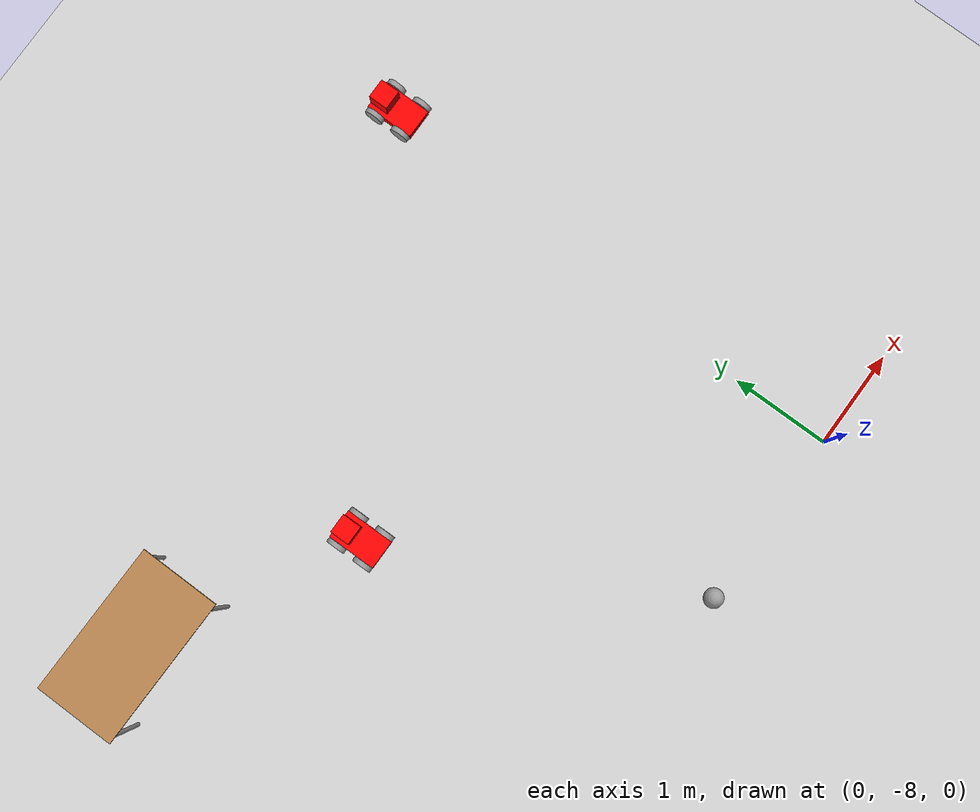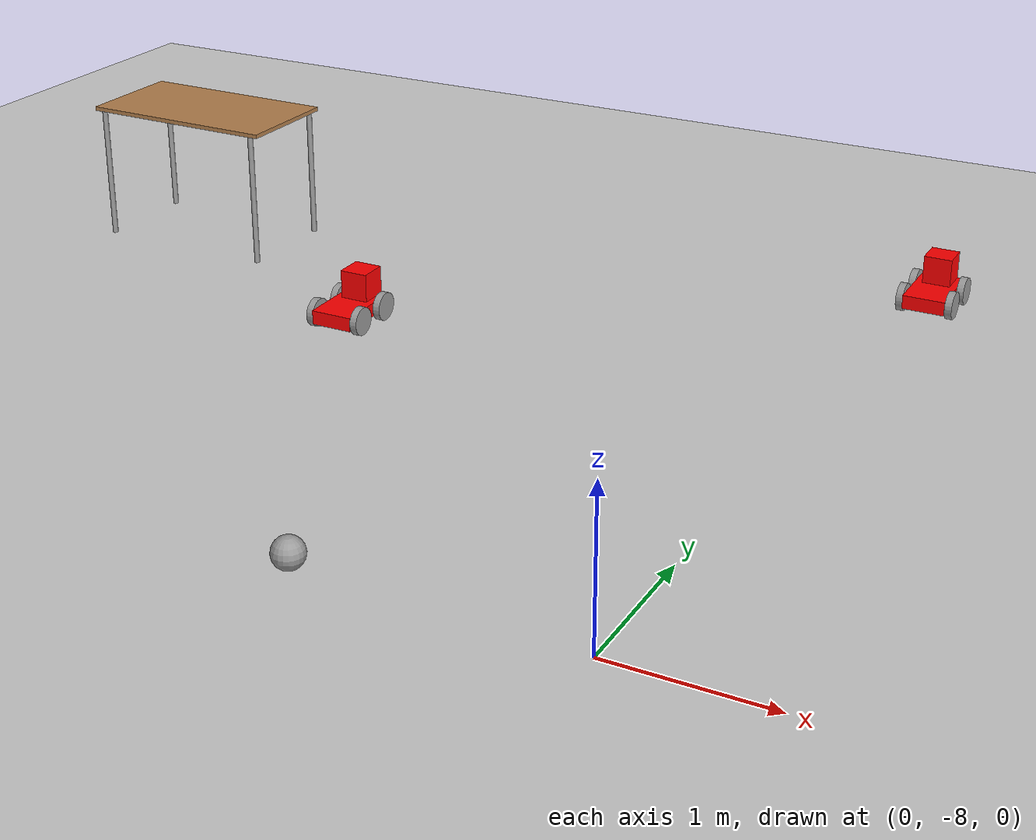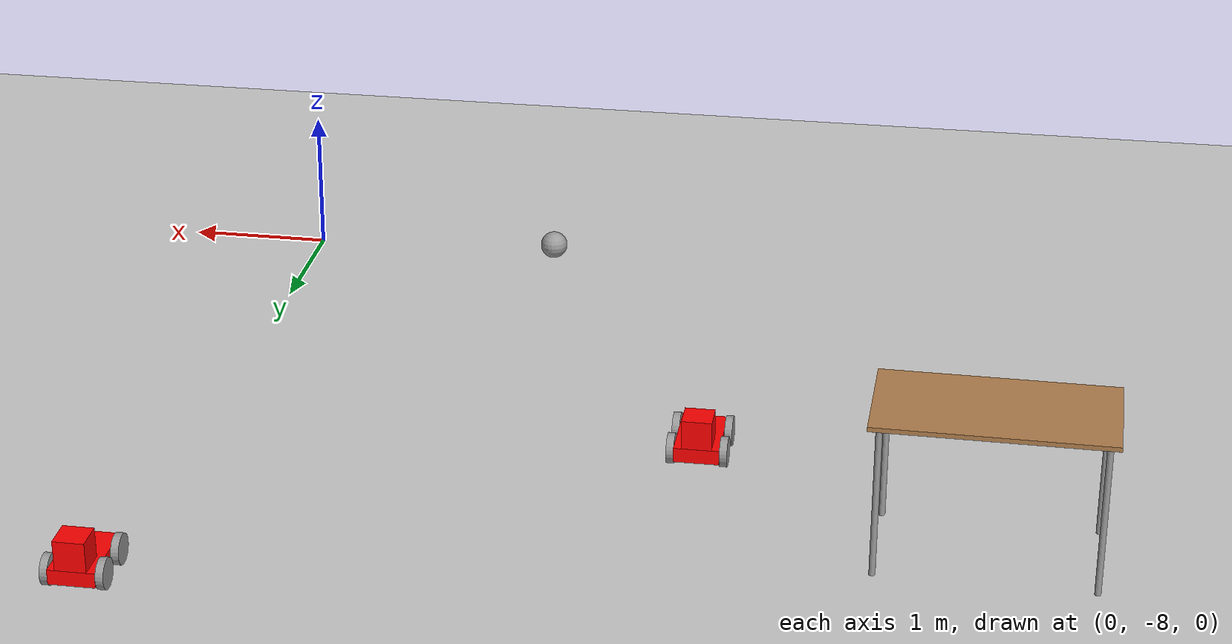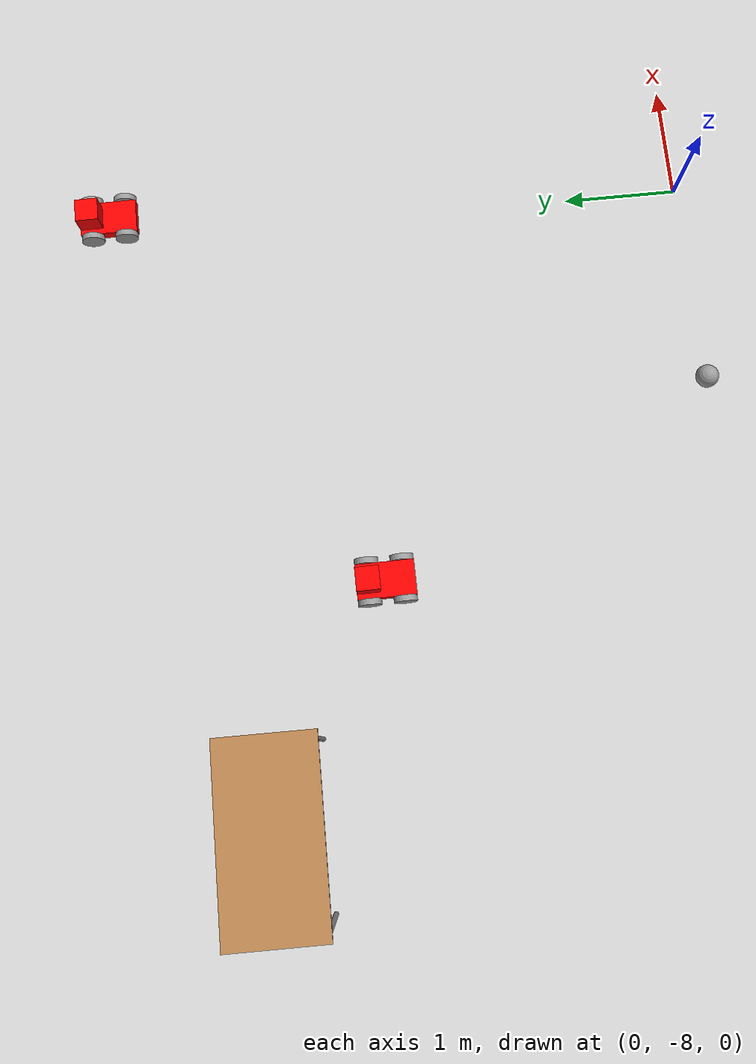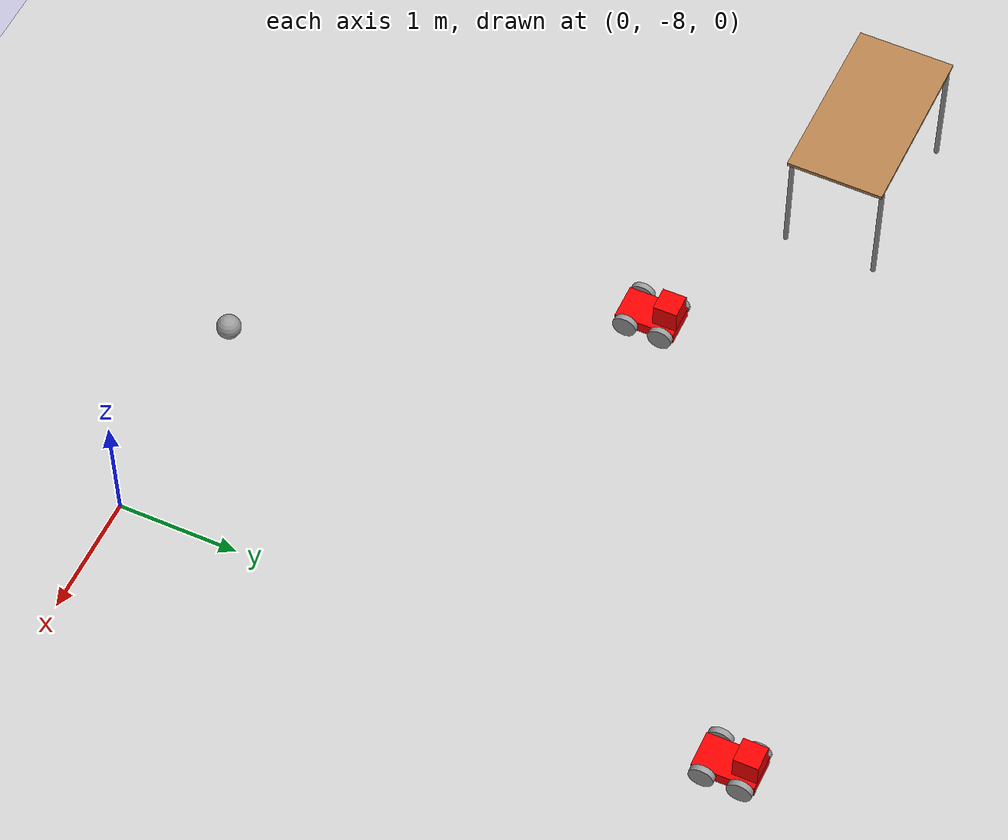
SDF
<sdf version="1.6">
 <world name="default">
  <model name="ground_plane">
   <static>1</static>
   <link name="link">
    <collision name="collision">
     <geometry><plane><normal>0 0 1</normal><size>100 100</size></plane></geometry>
     <surface>
      <contact><collide_bitmask>65535</collide_bitmask></contact>
      <friction><ode><mu>100</mu><mu2>50</mu2></ode></friction>
     </surface>
    </collision>
    <visual name="visual">
     <cast_shadows>0</cast_shadows>
     <geometry><plane><normal>0 0 1</normal><size>100 100</size></plane></geometry>
     <material>
      <script><uri>file://media/materials/scripts/gazebo.material</uri><name>Gazebo/Grey</name></script>
     </material>
    </visual>
   </link>
  </model>
  <model name="table">
   <static>1</static>
   <link name="link">
    <collision name="surface">
     <pose>0 0 1 0 -0 0</pose>
     <geometry><box><size>1.5 0.8 0.03</size></box></geometry>
     <surface><friction><ode><mu>0.6</mu><mu2>0.6</mu2></ode></friction></surface>
    </collision>
    <visual name="visual1">
     <pose>0 0 1 0 -0 0</pose>
     <geometry><box><size>1.5 0.8 0.03</size></box></geometry>
     <material>
      <script><uri>file://media/materials/scripts/gazebo.material</uri><name>Gazebo/Wood</name></script>
     </material>
    </visual>
    <collision name="front_left_leg">
     <pose>0.68 0.38 0.5 0 -0 0</pose>
     <geometry><cylinder><radius>0.02</radius><length>1</length></cylinder></geometry>
    </collision>
    <visual name="front_left_leg">
     <pose>0.68 0.38 0.5 0 -0 0</pose>
     <geometry><cylinder><radius>0.02</radius><length>1</length></cylinder></geometry>
     <material>
      <script><uri>file://media/materials/scripts/gazebo.material</uri><name>Gazebo/Grey</name></script>
     </material>
    </visual>
    <collision name="front_right_leg">
     <pose>0.68 -0.38 0.5 0 -0 0</pose>
     <geometry><cylinder><radius>0.02</radius><length>1</length></cylinder></geometry>
    </collision>
    <visual name="front_right_leg">
     <pose>0.68 -0.38 0.5 0 -0 0</pose>
     <geometry><cylinder><radius>0.02</radius><length>1</length></cylinder></geometry>
     <material>
      <script><uri>file://media/materials/scripts/gazebo.material</uri><name>Gazebo/Grey</name></script>
     </material>
    </visual>
    <collision name="back_right_leg">
     <pose>-0.68 -0.38 0.5 0 -0 0</pose>
     <geometry><cylinder><radius>0.02</radius><length>1</length></cylinder></geometry>
    </collision>
    <visual name="back_right_leg">
     <pose>-0.68 -0.38 0.5 0 -0 0</pose>
     <geometry><cylinder><radius>0.02</radius><length>1</length></cylinder></geometry>
     <material>
      <script><uri>file://media/materials/scripts/gazebo.material</uri><name>Gazebo/Grey</name></script>
     </material>
    </visual>
    <collision name="back_left_leg">
     <pose>-0.68 0.38 0.5 0 -0 0</pose>
     <geometry><cylinder><radius>0.02</radius><length>1</length></cylinder></geometry>
    </collision>
    <visual name="back_left_leg">
     <pose>-0.68 0.38 0.5 0 -0 0</pose>
     <geometry><cylinder><radius>0.02</radius><length>1</length></cylinder></geometry>
     <material>
      <script><uri>file://media/materials/scripts/gazebo.material</uri><name>Gazebo/Grey</name></script>
     </material>
    </visual>
   </link>
   <pose>-5.22763 -3.98162 0 0 0 -0.01339</pose>
  </model>
  <model name="RobotCar_0">
   <link name="link_0_clone">
    <pose>-0 -0.025 -0.025 0 -0 0</pose>
    <inertial>
     <mass>0.5</mass>
     <inertia>
      <ixx>0.166667</ixx>
      <ixy>0</ixy>
      <ixz>0</ixz>
      <iyy>0.166667</iyy>
      <iyz>0</iyz>
      <izz>0.166667</izz>
     </inertia>
    </inertial>
    <visual name="visual">
     <geometry><box><size>0.3 0.5 0.1</size></box></geometry>
     <material>
      <lighting>1</lighting>
      <script><uri>file://media/materials/scripts/gazebo.material</uri><name>Gazebo/Grey</name></script>
      <shader type="pixel"><normal_map>__default__</normal_map></shader>
      <ambient>1 0 0 1</ambient>
      <diffuse>0.7 0.7 0.7 1</diffuse>
      <specular>0.01 0.01 0.01 1</specular>
      <emissive>0 0 0 1</emissive>
     </material>
    </visual>
    <collision name="collision">
     <geometry><box><size>0.3 0.5 0.1</size></box></geometry>
     <surface>
      <friction>
       <ode><mu>1</mu><mu2>1</mu2><fdir1>0 0 0</fdir1><slip1>0</slip1><slip2>0</slip2></ode>
       <torsional>
        <coefficient>1</coefficient>
        <patch_radius>0</patch_radius>
        <surface_radius>0</surface_radius>
        <use_patch_radius>1</use_patch_radius>
        <ode><slip>0</slip></ode>
       </torsional>
      </friction>
      <bounce><restitution_coefficient>0</restitution_coefficient><threshold>1e+06</threshold></bounce>
      <contact>
       <collide_without_contact>0</collide_without_contact>
       <collide_without_contact_bitmask>1</collide_without_contact_bitmask>
       <collide_bitmask>1</collide_bitmask>
       <ode>
        <soft_cfm>0</soft_cfm>
        <soft_erp>0.2</soft_erp>
        <kp>1e+13</kp>
        <kd>1</kd>
        <max_vel>0.01</max_vel>
        <min_depth>0</min_depth>
       </ode>
       <bullet>
        <split_impulse>1</split_impulse>
        <split_impulse_penetration_threshold>-0.01</split_impulse_penetration_threshold>
        <soft_cfm>0</soft_cfm>
        <soft_erp>0.2</soft_erp>
        <kp>1e+13</kp>
        <kd>1</kd>
       </bullet>
      </contact>
     </surface>
    </collision>
   </link>
   <link name="link_4_clone">
    <pose>-0.17508 0.124999 -0.025 0 -1.57 0</pose>
    <inertial>
     <mass>1</mass>
     <inertia><ixx>0.145833</ixx><ixy>0</ixy><ixz>0</ixz><iyy>0.145833</iyy><iyz>0</iyz><izz>0.125</izz></inertia>
    </inertial>
    <visual name="visual">
     <geometry><cylinder><radius>0.1</radius><length>0.05</length></cylinder></geometry>
     <material>
      <lighting>1</lighting>
      <script><uri>file://media/materials/scripts/gazebo.material</uri><name>Gazebo/Grey</name></script>
      <shader type="pixel"><normal_map>__default__</normal_map></shader>
      <ambient>0.3 0.3 0.3 1</ambient>
      <diffuse>0.7 0.7 0.7 1</diffuse>
      <specular>0.01 0.01 0.01 1</specular>
      <emissive>0 0 0 1</emissive>
     </material>
    </visual>
    <collision name="collision">
     <geometry><cylinder><radius>0.1</radius><length>0.05</length></cylinder></geometry>
     <surface>
      <friction>
       <ode><mu>1</mu><mu2>1</mu2><fdir1>0 0 0</fdir1><slip1>0</slip1><slip2>0</slip2></ode>
       <torsional>
        <coefficient>1</coefficient>
        <patch_radius>0</patch_radius>
        <surface_radius>0</surface_radius>
        <use_patch_radius>1</use_patch_radius>
        <ode><slip>0</slip></ode>
       </torsional>
      </friction>
      <bounce><restitution_coefficient>0</restitution_coefficient><threshold>1e+06</threshold></bounce>
      <contact>
       <collide_without_contact>0</collide_without_contact>
       <collide_without_contact_bitmask>1</collide_without_contact_bitmask>
       <collide_bitmask>1</collide_bitmask>
       <ode>
        <soft_cfm>0</soft_cfm>
        <soft_erp>0.2</soft_erp>
        <kp>1e+13</kp>
        <kd>1</kd>
        <max_vel>0.01</max_vel>
        <min_depth>0</min_depth>
       </ode>
       <bullet>
        <split_impulse>1</split_impulse>
        <split_impulse_penetration_threshold>-0.01</split_impulse_penetration_threshold>
        <soft_cfm>0</soft_cfm>
        <soft_erp>0.2</soft_erp>
        <kp>1e+13</kp>
        <kd>1</kd>
       </bullet>
      </contact>
     </surface>
    </collision>
   </link>
   <link name="link_4_clone_clone">
    <pose>0.17508 0.124999 -0.025 0 -1.57 0</pose>
    <inertial>
     <mass>1</mass>
     <inertia><ixx>0.145833</ixx><ixy>0</ixy><ixz>0</ixz><iyy>0.145833</iyy><iyz>0</iyz><izz>0.125</izz></inertia>
    </inertial>
    <visual name="visual">
     <geometry><cylinder><radius>0.1</radius><length>0.05</length></cylinder></geometry>
     <material>
      <lighting>1</lighting>
      <script><uri>file://media/materials/scripts/gazebo.material</uri><name>Gazebo/Grey</name></script>
      <shader type="pixel"><normal_map>__default__</normal_map></shader>
      <ambient>0.3 0.3 0.3 1</ambient>
      <diffuse>0.7 0.7 0.7 1</diffuse>
      <specular>0.01 0.01 0.01 1</specular>
      <emissive>0 0 0 1</emissive>
     </material>
    </visual>
    <collision name="collision">
     <geometry><cylinder><radius>0.1</radius><length>0.05</length></cylinder></geometry>
     <surface>
      <friction>
       <ode><mu>1</mu><mu2>1</mu2><fdir1>0 0 0</fdir1><slip1>0</slip1><slip2>0</slip2></ode>
       <torsional>
        <coefficient>1</coefficient>
        <patch_radius>0</patch_radius>
        <surface_radius>0</surface_radius>
        <use_patch_radius>1</use_patch_radius>
        <ode><slip>0</slip></ode>
       </torsional>
      </friction>
      <bounce><restitution_coefficient>0</restitution_coefficient><threshold>1e+06</threshold></bounce>
      <contact>
       <collide_without_contact>0</collide_without_contact>
       <collide_without_contact_bitmask>1</collide_without_contact_bitmask>
       <collide_bitmask>1</collide_bitmask>
       <ode>
        <soft_cfm>0</soft_cfm>
        <soft_erp>0.2</soft_erp>
        <kp>1e+13</kp>
        <kd>1</kd>
        <max_vel>0.01</max_vel>
        <min_depth>0</min_depth>
       </ode>
       <bullet>
        <split_impulse>1</split_impulse>
        <split_impulse_penetration_threshold>-0.01</split_impulse_penetration_threshold>
        <soft_cfm>0</soft_cfm>
        <soft_erp>0.2</soft_erp>
        <kp>1e+13</kp>
        <kd>1</kd>
       </bullet>
      </contact>
     </surface>
    </collision>
   </link>
   <link name="link_4_clone_clone_0">
    <pose>0.17508 -0.175 -0.025 0 -1.57 0</pose>
    <inertial>
     <mass>1</mass>
     <inertia><ixx>0.145833</ixx><ixy>0</ixy><ixz>0</ixz><iyy>0.145833</iyy><iyz>0</iyz><izz>0.125</izz></inertia>
    </inertial>
    <visual name="visual">
     <geometry><cylinder><radius>0.1</radius><length>0.05</length></cylinder></geometry>
     <material>
      <lighting>1</lighting>
      <script><uri>file://media/materials/scripts/gazebo.material</uri><name>Gazebo/Grey</name></script>
      <shader type="pixel"><normal_map>__default__</normal_map></shader>
      <ambient>0.3 0.3 0.3 1</ambient>
      <diffuse>0.7 0.7 0.7 1</diffuse>
      <specular>0.01 0.01 0.01 1</specular>
      <emissive>0 0 0 1</emissive>
     </material>
    </visual>
    <collision name="collision">
     <geometry><cylinder><radius>0.1</radius><length>0.05</length></cylinder></geometry>
     <surface>
      <friction>
       <ode><mu>1</mu><mu2>1</mu2><fdir1>0 0 0</fdir1><slip1>0</slip1><slip2>0</slip2></ode>
       <torsional>
        <coefficient>1</coefficient>
        <patch_radius>0</patch_radius>
        <surface_radius>0</surface_radius>
        <use_patch_radius>1</use_patch_radius>
        <ode><slip>0</slip></ode>
       </torsional>
      </friction>
      <bounce><restitution_coefficient>0</restitution_coefficient><threshold>1e+06</threshold></bounce>
      <contact>
       <collide_without_contact>0</collide_without_contact>
       <collide_without_contact_bitmask>1</collide_without_contact_bitmask>
       <collide_bitmask>1</collide_bitmask>
       <ode>
        <soft_cfm>0</soft_cfm>
        <soft_erp>0.2</soft_erp>
        <kp>1e+13</kp>
        <kd>1</kd>
        <max_vel>0.01</max_vel>
        <min_depth>0</min_depth>
       </ode>
       <bullet>
        <split_impulse>1</split_impulse>
        <split_impulse_penetration_threshold>-0.01</split_impulse_penetration_threshold>
        <soft_cfm>0</soft_cfm>
        <soft_erp>0.2</soft_erp>
        <kp>1e+13</kp>
        <kd>1</kd>
       </bullet>
      </contact>
     </surface>
    </collision>
   </link>
   <link name="link_4_clone_clone_1">
    <pose>-0.17508 -0.175 -0.025 0 -1.57 0</pose>
    <inertial>
     <mass>1</mass>
     <inertia><ixx>0.145833</ixx><ixy>0</ixy><ixz>0</ixz><iyy>0.145833</iyy><iyz>0</iyz><izz>0.125</izz></inertia>
    </inertial>
    <visual name="visual">
     <geometry><cylinder><radius>0.1</radius><length>0.05</length></cylinder></geometry>
     <material>
      <lighting>1</lighting>
      <script><uri>file://media/materials/scripts/gazebo.material</uri><name>Gazebo/Grey</name></script>
      <shader type="pixel"><normal_map>__default__</normal_map></shader>
      <ambient>0.3 0.3 0.3 1</ambient>
      <diffuse>0.7 0.7 0.7 1</diffuse>
      <specular>0.01 0.01 0.01 1</specular>
      <emissive>0 0 0 1</emissive>
     </material>
    </visual>
    <collision name="collision">
     <geometry><cylinder><radius>0.1</radius><length>0.05</length></cylinder></geometry>
     <surface>
      <friction>
       <ode><mu>1</mu><mu2>1</mu2><fdir1>0 0 0</fdir1><slip1>0</slip1><slip2>0</slip2></ode>
       <torsional>
        <coefficient>1</coefficient>
        <patch_radius>0</patch_radius>
        <surface_radius>0</surface_radius>
        <use_patch_radius>1</use_patch_radius>
        <ode><slip>0</slip></ode>
       </torsional>
      </friction>
      <bounce><restitution_coefficient>0</restitution_coefficient><threshold>1e+06</threshold></bounce>
      <contact>
       <collide_without_contact>0</collide_without_contact>
       <collide_without_contact_bitmask>1</collide_without_contact_bitmask>
       <collide_bitmask>1</collide_bitmask>
       <ode>
        <soft_cfm>0</soft_cfm>
        <soft_erp>0.2</soft_erp>
        <kp>1e+13</kp>
        <kd>1</kd>
        <max_vel>0.01</max_vel>
        <min_depth>0</min_depth>
       </ode>
       <bullet>
        <split_impulse>1</split_impulse>
        <split_impulse_penetration_threshold>-0.01</split_impulse_penetration_threshold>
        <soft_cfm>0</soft_cfm>
        <soft_erp>0.2</soft_erp>
        <kp>1e+13</kp>
        <kd>1</kd>
       </bullet>
      </contact>
     </surface>
    </collision>
   </link>
   <link name="link_5_clone">
    <pose>0 0.125 0.125 0 -0 0</pose>
    <inertial>
     <mass>0.2</mass>
     <inertia><ixx>1</ixx><ixy>0</ixy><ixz>0</ixz><iyy>1</iyy><iyz>0</iyz><izz>1</izz></inertia>
    </inertial>
    <visual name="visual">
     <geometry><box><size>0.2 0.2 0.2</size></box></geometry>
     <material>
      <lighting>1</lighting>
      <script><uri>file://media/materials/scripts/gazebo.material</uri><name>Gazebo/Grey</name></script>
      <shader type="pixel"><normal_map>__default__</normal_map></shader>
      <ambient>1 0 0 1</ambient>
      <diffuse>0.7 0.7 0.7 1</diffuse>
      <specular>0.01 0.01 0.01 1</specular>
      <emissive>0 0 0 1</emissive>
     </material>
    </visual>
    <collision name="collision">
     <geometry><box><size>0.2 0.2 0.2</size></box></geometry>
     <surface>
      <friction>
       <ode><mu>1</mu><mu2>1</mu2><fdir1>0 0 0</fdir1><slip1>0</slip1><slip2>0</slip2></ode>
       <torsional>
        <coefficient>1</coefficient>
        <patch_radius>0</patch_radius>
        <surface_radius>0</surface_radius>
        <use_patch_radius>1</use_patch_radius>
        <ode><slip>0</slip></ode>
       </torsional>
      </friction>
      <bounce><restitution_coefficient>0</restitution_coefficient><threshold>1e+06</threshold></bounce>
      <contact>
       <collide_without_contact>0</collide_without_contact>
       <collide_without_contact_bitmask>1</collide_without_contact_bitmask>
       <collide_bitmask>1</collide_bitmask>
       <ode>
        <soft_cfm>0</soft_cfm>
        <soft_erp>0.2</soft_erp>
        <kp>1e+13</kp>
        <kd>1</kd>
        <max_vel>0.01</max_vel>
        <min_depth>0</min_depth>
       </ode>
       <bullet>
        <split_impulse>1</split_impulse>
        <split_impulse_penetration_threshold>-0.01</split_impulse_penetration_threshold>
        <soft_cfm>0</soft_cfm>
        <soft_erp>0.2</soft_erp>
        <kp>1e+13</kp>
        <kd>1</kd>
       </bullet>
      </contact>
     </surface>
    </collision>
   </link>
   <joint name="link_0_clone_JOINT_10" type="revolute">
    <parent>link_0_clone</parent>
    <child>link_4_clone_clone_0</child>
    <axis>
     <xyz>0 0 1</xyz>
     <use_parent_model_frame>0</use_parent_model_frame>
     <limit>
      <lower>-1.79769e+308</lower>
      <upper>1.79769e+308</upper>
      <effort>-1</effort>
      <velocity>-1</velocity>
     </limit>
     <dynamics>
      <spring_reference>0</spring_reference>
      <spring_stiffness>0</spring_stiffness>
      <damping>0</damping>
      <friction>0</friction>
     </dynamics>
    </axis>
    <physics>
     <ode><limit><cfm>0</cfm><erp>0.2</erp></limit><suspension><cfm>0</cfm><erp>0.2</erp></suspension></ode>
    </physics>
   </joint>
   <joint name="link_0_clone_JOINT_11" type="fixed">
    <parent>link_0_clone</parent>
    <child>link_5_clone</child>
    <physics>
     <ode><limit><cfm>0</cfm><erp>0.2</erp></limit><suspension><cfm>0</cfm><erp>0.2</erp></suspension></ode>
    </physics>
   </joint>
   <joint name="link_0_clone_JOINT_7" type="revolute">
    <parent>link_0_clone</parent>
    <child>link_4_clone_clone_1</child>
    <axis>
     <xyz>0 0 1</xyz>
     <use_parent_model_frame>0</use_parent_model_frame>
     <limit>
      <lower>-1.79769e+308</lower>
      <upper>1.79769e+308</upper>
      <effort>-1</effort>
      <velocity>-1</velocity>
     </limit>
     <dynamics>
      <spring_reference>0</spring_reference>
      <spring_stiffness>0</spring_stiffness>
      <damping>0</damping>
      <friction>0</friction>
     </dynamics>
    </axis>
    <physics>
     <ode><limit><cfm>0</cfm><erp>0.2</erp></limit><suspension><cfm>0</cfm><erp>0.2</erp></suspension></ode>
    </physics>
   </joint>
   <joint name="link_0_clone_JOINT_8" type="revolute">
    <parent>link_0_clone</parent>
    <child>link_4_clone</child>
    <axis>
     <xyz>0 0 1</xyz>
     <use_parent_model_frame>0</use_parent_model_frame>
     <limit>
      <lower>-1.79769e+308</lower>
      <upper>1.79769e+308</upper>
      <effort>-1</effort>
      <velocity>-1</velocity>
     </limit>
     <dynamics>
      <spring_reference>0</spring_reference>
      <spring_stiffness>0</spring_stiffness>
      <damping>0</damping>
      <friction>0</friction>
     </dynamics>
    </axis>
    <physics>
     <ode><limit><cfm>0</cfm><erp>0.2</erp></limit><suspension><cfm>0</cfm><erp>0.2</erp></suspension></ode>
    </physics>
   </joint>
   <joint name="link_0_clone_JOINT_9" type="revolute">
    <parent>link_0_clone</parent>
    <child>link_4_clone_clone</child>
    <axis>
     <xyz>0 0 1</xyz>
     <use_parent_model_frame>0</use_parent_model_frame>
     <limit>
      <lower>-1.79769e+308</lower>
      <upper>1.79769e+308</upper>
      <effort>-1</effort>
      <velocity>-1</velocity>
     </limit>
     <dynamics>
      <spring_reference>0</spring_reference>
      <spring_stiffness>0</spring_stiffness>
      <damping>0</damping>
      <friction>0</friction>
     </dynamics>
    </axis>
    <physics>
     <ode><limit><cfm>0</cfm><erp>0.2</erp></limit><suspension><cfm>0</cfm><erp>0.2</erp></suspension></ode>
    </physics>
   </joint>
   <static>0</static>
   <pose>-3.31261 -4.98698 0.12502 5e-06 0 0.002718</pose>
  </model>
  <model name="RobotCar">
   <link name="link_0_clone">
    <pose>-0 -0.025 -0.025 0 -0 0</pose>
    <inertial>
     <mass>0.5</mass>
     <inertia>
      <ixx>0.166667</ixx>
      <ixy>0</ixy>
      <ixz>0</ixz>
      <iyy>0.166667</iyy>
      <iyz>0</iyz>
      <izz>0.166667</izz>
     </inertia>
    </inertial>
    <visual name="visual">
     <geometry><box><size>0.3 0.5 0.1</size></box></geometry>
     <material>
      <lighting>1</lighting>
      <script><uri>file://media/materials/scripts/gazebo.material</uri><name>Gazebo/Grey</name></script>
      <shader type="pixel"><normal_map>__default__</normal_map></shader>
      <ambient>1 0 0 1</ambient>
      <diffuse>0.7 0.7 0.7 1</diffuse>
      <specular>0.01 0.01 0.01 1</specular>
      <emissive>0 0 0 1</emissive>
     </material>
    </visual>
    <collision name="collision">
     <geometry><box><size>0.3 0.5 0.1</size></box></geometry>
     <surface>
      <friction>
       <ode><mu>1</mu><mu2>1</mu2><fdir1>0 0 0</fdir1><slip1>0</slip1><slip2>0</slip2></ode>
       <torsional>
        <coefficient>1</coefficient>
        <patch_radius>0</patch_radius>
        <surface_radius>0</surface_radius>
        <use_patch_radius>1</use_patch_radius>
        <ode><slip>0</slip></ode>
       </torsional>
      </friction>
      <bounce><restitution_coefficient>0</restitution_coefficient><threshold>1e+06</threshold></bounce>
      <contact>
       <collide_without_contact>0</collide_without_contact>
       <collide_without_contact_bitmask>1</collide_without_contact_bitmask>
       <collide_bitmask>1</collide_bitmask>
       <ode>
        <soft_cfm>0</soft_cfm>
        <soft_erp>0.2</soft_erp>
        <kp>1e+13</kp>
        <kd>1</kd>
        <max_vel>0.01</max_vel>
        <min_depth>0</min_depth>
       </ode>
       <bullet>
        <split_impulse>1</split_impulse>
        <split_impulse_penetration_threshold>-0.01</split_impulse_penetration_threshold>
        <soft_cfm>0</soft_cfm>
        <soft_erp>0.2</soft_erp>
        <kp>1e+13</kp>
        <kd>1</kd>
       </bullet>
      </contact>
     </surface>
    </collision>
   </link>
   <link name="link_4_clone">
    <pose>-0.17508 0.124999 -0.025 0 -1.57 0</pose>
    <inertial>
     <mass>1</mass>
     <inertia><ixx>0.145833</ixx><ixy>0</ixy><ixz>0</ixz><iyy>0.145833</iyy><iyz>0</iyz><izz>0.125</izz></inertia>
    </inertial>
    <visual name="visual">
     <geometry><cylinder><radius>0.1</radius><length>0.05</length></cylinder></geometry>
     <material>
      <lighting>1</lighting>
      <script><uri>file://media/materials/scripts/gazebo.material</uri><name>Gazebo/Grey</name></script>
      <shader type="pixel"><normal_map>__default__</normal_map></shader>
      <ambient>0.3 0.3 0.3 1</ambient>
      <diffuse>0.7 0.7 0.7 1</diffuse>
      <specular>0.01 0.01 0.01 1</specular>
      <emissive>0 0 0 1</emissive>
     </material>
    </visual>
    <collision name="collision">
     <geometry><cylinder><radius>0.1</radius><length>0.05</length></cylinder></geometry>
     <surface>
      <friction>
       <ode><mu>1</mu><mu2>1</mu2><fdir1>0 0 0</fdir1><slip1>0</slip1><slip2>0</slip2></ode>
       <torsional>
        <coefficient>1</coefficient>
        <patch_radius>0</patch_radius>
        <surface_radius>0</surface_radius>
        <use_patch_radius>1</use_patch_radius>
        <ode><slip>0</slip></ode>
       </torsional>
      </friction>
      <bounce><restitution_coefficient>0</restitution_coefficient><threshold>1e+06</threshold></bounce>
      <contact>
       <collide_without_contact>0</collide_without_contact>
       <collide_without_contact_bitmask>1</collide_without_contact_bitmask>
       <collide_bitmask>1</collide_bitmask>
       <ode>
        <soft_cfm>0</soft_cfm>
        <soft_erp>0.2</soft_erp>
        <kp>1e+13</kp>
        <kd>1</kd>
        <max_vel>0.01</max_vel>
        <min_depth>0</min_depth>
       </ode>
       <bullet>
        <split_impulse>1</split_impulse>
        <split_impulse_penetration_threshold>-0.01</split_impulse_penetration_threshold>
        <soft_cfm>0</soft_cfm>
        <soft_erp>0.2</soft_erp>
        <kp>1e+13</kp>
        <kd>1</kd>
       </bullet>
      </contact>
     </surface>
    </collision>
   </link>
   <link name="link_4_clone_clone">
    <pose>0.17508 0.124999 -0.025 0 -1.57 0</pose>
    <inertial>
     <mass>1</mass>
     <inertia><ixx>0.145833</ixx><ixy>0</ixy><ixz>0</ixz><iyy>0.145833</iyy><iyz>0</iyz><izz>0.125</izz></inertia>
    </inertial>
    <visual name="visual">
     <geometry><cylinder><radius>0.1</radius><length>0.05</length></cylinder></geometry>
     <material>
      <lighting>1</lighting>
      <script><uri>file://media/materials/scripts/gazebo.material</uri><name>Gazebo/Grey</name></script>
      <shader type="pixel"><normal_map>__default__</normal_map></shader>
      <ambient>0.3 0.3 0.3 1</ambient>
      <diffuse>0.7 0.7 0.7 1</diffuse>
      <specular>0.01 0.01 0.01 1</specular>
      <emissive>0 0 0 1</emissive>
     </material>
    </visual>
    <collision name="collision">
     <geometry><cylinder><radius>0.1</radius><length>0.05</length></cylinder></geometry>
     <surface>
      <friction>
       <ode><mu>1</mu><mu2>1</mu2><fdir1>0 0 0</fdir1><slip1>0</slip1><slip2>0</slip2></ode>
       <torsional>
        <coefficient>1</coefficient>
        <patch_radius>0</patch_radius>
        <surface_radius>0</surface_radius>
        <use_patch_radius>1</use_patch_radius>
        <ode><slip>0</slip></ode>
       </torsional>
      </friction>
      <bounce><restitution_coefficient>0</restitution_coefficient><threshold>1e+06</threshold></bounce>
      <contact>
       <collide_without_contact>0</collide_without_contact>
       <collide_without_contact_bitmask>1</collide_without_contact_bitmask>
       <collide_bitmask>1</collide_bitmask>
       <ode>
        <soft_cfm>0</soft_cfm>
        <soft_erp>0.2</soft_erp>
        <kp>1e+13</kp>
        <kd>1</kd>
        <max_vel>0.01</max_vel>
        <min_depth>0</min_depth>
       </ode>
       <bullet>
        <split_impulse>1</split_impulse>
        <split_impulse_penetration_threshold>-0.01</split_impulse_penetration_threshold>
        <soft_cfm>0</soft_cfm>
        <soft_erp>0.2</soft_erp>
        <kp>1e+13</kp>
        <kd>1</kd>
       </bullet>
      </contact>
     </surface>
    </collision>
   </link>
   <link name="link_4_clone_clone_0">
    <pose>0.17508 -0.175 -0.025 0 -1.57 0</pose>
    <inertial>
     <mass>1</mass>
     <inertia><ixx>0.145833</ixx><ixy>0</ixy><ixz>0</ixz><iyy>0.145833</iyy><iyz>0</iyz><izz>0.125</izz></inertia>
    </inertial>
    <visual name="visual">
     <geometry><cylinder><radius>0.1</radius><length>0.05</length></cylinder></geometry>
     <material>
      <lighting>1</lighting>
      <script><uri>file://media/materials/scripts/gazebo.material</uri><name>Gazebo/Grey</name></script>
      <shader type="pixel"><normal_map>__default__</normal_map></shader>
      <ambient>0.3 0.3 0.3 1</ambient>
      <diffuse>0.7 0.7 0.7 1</diffuse>
      <specular>0.01 0.01 0.01 1</specular>
      <emissive>0 0 0 1</emissive>
     </material>
    </visual>
    <collision name="collision">
     <geometry><cylinder><radius>0.1</radius><length>0.05</length></cylinder></geometry>
     <surface>
      <friction>
       <ode><mu>1</mu><mu2>1</mu2><fdir1>0 0 0</fdir1><slip1>0</slip1><slip2>0</slip2></ode>
       <torsional>
        <coefficient>1</coefficient>
        <patch_radius>0</patch_radius>
        <surface_radius>0</surface_radius>
        <use_patch_radius>1</use_patch_radius>
        <ode><slip>0</slip></ode>
       </torsional>
      </friction>
      <bounce><restitution_coefficient>0</restitution_coefficient><threshold>1e+06</threshold></bounce>
      <contact>
       <collide_without_contact>0</collide_without_contact>
       <collide_without_contact_bitmask>1</collide_without_contact_bitmask>
       <collide_bitmask>1</collide_bitmask>
       <ode>
        <soft_cfm>0</soft_cfm>
        <soft_erp>0.2</soft_erp>
        <kp>1e+13</kp>
        <kd>1</kd>
        <max_vel>0.01</max_vel>
        <min_depth>0</min_depth>
       </ode>
       <bullet>
        <split_impulse>1</split_impulse>
        <split_impulse_penetration_threshold>-0.01</split_impulse_penetration_threshold>
        <soft_cfm>0</soft_cfm>
        <soft_erp>0.2</soft_erp>
        <kp>1e+13</kp>
        <kd>1</kd>
       </bullet>
      </contact>
     </surface>
    </collision>
   </link>
   <link name="link_4_clone_clone_1">
    <pose>-0.17508 -0.175 -0.025 0 -1.57 0</pose>
    <inertial>
     <mass>1</mass>
     <inertia><ixx>0.145833</ixx><ixy>0</ixy><ixz>0</ixz><iyy>0.145833</iyy><iyz>0</iyz><izz>0.125</izz></inertia>
    </inertial>
    <visual name="visual">
     <geometry><cylinder><radius>0.1</radius><length>0.05</length></cylinder></geometry>
     <material>
      <lighting>1</lighting>
      <script><uri>file://media/materials/scripts/gazebo.material</uri><name>Gazebo/Grey</name></script>
      <shader type="pixel"><normal_map>__default__</normal_map></shader>
      <ambient>0.3 0.3 0.3 1</ambient>
      <diffuse>0.7 0.7 0.7 1</diffuse>
      <specular>0.01 0.01 0.01 1</specular>
      <emissive>0 0 0 1</emissive>
     </material>
    </visual>
    <collision name="collision">
     <geometry><cylinder><radius>0.1</radius><length>0.05</length></cylinder></geometry>
     <surface>
      <friction>
       <ode><mu>1</mu><mu2>1</mu2><fdir1>0 0 0</fdir1><slip1>0</slip1><slip2>0</slip2></ode>
       <torsional>
        <coefficient>1</coefficient>
        <patch_radius>0</patch_radius>
        <surface_radius>0</surface_radius>
        <use_patch_radius>1</use_patch_radius>
        <ode><slip>0</slip></ode>
       </torsional>
      </friction>
      <bounce><restitution_coefficient>0</restitution_coefficient><threshold>1e+06</threshold></bounce>
      <contact>
       <collide_without_contact>0</collide_without_contact>
       <collide_without_contact_bitmask>1</collide_without_contact_bitmask>
       <collide_bitmask>1</collide_bitmask>
       <ode>
        <soft_cfm>0</soft_cfm>
        <soft_erp>0.2</soft_erp>
        <kp>1e+13</kp>
        <kd>1</kd>
        <max_vel>0.01</max_vel>
        <min_depth>0</min_depth>
       </ode>
       <bullet>
        <split_impulse>1</split_impulse>
        <split_impulse_penetration_threshold>-0.01</split_impulse_penetration_threshold>
        <soft_cfm>0</soft_cfm>
        <soft_erp>0.2</soft_erp>
        <kp>1e+13</kp>
        <kd>1</kd>
       </bullet>
      </contact>
     </surface>
    </collision>
   </link>
   <link name="link_5_clone">
    <pose>0 0.125 0.125 0 -0 0</pose>
    <inertial>
     <mass>0.2</mass>
     <inertia><ixx>1</ixx><ixy>0</ixy><ixz>0</ixz><iyy>1</iyy><iyz>0</iyz><izz>1</izz></inertia>
    </inertial>
    <visual name="visual">
     <geometry><box><size>0.2 0.2 0.2</size></box></geometry>
     <material>
      <lighting>1</lighting>
      <script><uri>file://media/materials/scripts/gazebo.material</uri><name>Gazebo/Grey</name></script>
      <shader type="pixel"><normal_map>__default__</normal_map></shader>
      <ambient>1 0 0 1</ambient>
      <diffuse>0.7 0.7 0.7 1</diffuse>
      <specular>0.01 0.01 0.01 1</specular>
      <emissive>0 0 0 1</emissive>
     </material>
    </visual>
    <collision name="collision">
     <geometry><box><size>0.2 0.2 0.2</size></box></geometry>
     <surface>
      <friction>
       <ode><mu>1</mu><mu2>1</mu2><fdir1>0 0 0</fdir1><slip1>0</slip1><slip2>0</slip2></ode>
       <torsional>
        <coefficient>1</coefficient>
        <patch_radius>0</patch_radius>
        <surface_radius>0</surface_radius>
        <use_patch_radius>1</use_patch_radius>
        <ode><slip>0</slip></ode>
       </torsional>
      </friction>
      <bounce><restitution_coefficient>0</restitution_coefficient><threshold>1e+06</threshold></bounce>
      <contact>
       <collide_without_contact>0</collide_without_contact>
       <collide_without_contact_bitmask>1</collide_without_contact_bitmask>
       <collide_bitmask>1</collide_bitmask>
       <ode>
        <soft_cfm>0</soft_cfm>
        <soft_erp>0.2</soft_erp>
        <kp>1e+13</kp>
        <kd>1</kd>
        <max_vel>0.01</max_vel>
        <min_depth>0</min_depth>
       </ode>
       <bullet>
        <split_impulse>1</split_impulse>
        <split_impulse_penetration_threshold>-0.01</split_impulse_penetration_threshold>
        <soft_cfm>0</soft_cfm>
        <soft_erp>0.2</soft_erp>
        <kp>1e+13</kp>
        <kd>1</kd>
       </bullet>
      </contact>
     </surface>
    </collision>
   </link>
   <joint name="link_0_clone_JOINT_10" type="revolute">
    <parent>link_0_clone</parent>
    <child>link_4_clone_clone_0</child>
    <axis>
     <xyz>0 0 1</xyz>
     <use_parent_model_frame>0</use_parent_model_frame>
     <limit>
      <lower>-1.79769e+308</lower>
      <upper>1.79769e+308</upper>
      <effort>-1</effort>
      <velocity>-1</velocity>
     </limit>
     <dynamics>
      <spring_reference>0</spring_reference>
      <spring_stiffness>0</spring_stiffness>
      <damping>0</damping>
      <friction>0</friction>
     </dynamics>
    </axis>
    <physics>
     <ode><limit><cfm>0</cfm><erp>0.2</erp></limit><suspension><cfm>0</cfm><erp>0.2</erp></suspension></ode>
    </physics>
   </joint>
   <joint name="link_0_clone_JOINT_11" type="fixed">
    <parent>link_0_clone</parent>
    <child>link_5_clone</child>
    <physics>
     <ode><limit><cfm>0</cfm><erp>0.2</erp></limit><suspension><cfm>0</cfm><erp>0.2</erp></suspension></ode>
    </physics>
   </joint>
   <joint name="link_0_clone_JOINT_7" type="revolute">
    <parent>link_0_clone</parent>
    <child>link_4_clone_clone_1</child>
    <axis>
     <xyz>0 0 1</xyz>
     <use_parent_model_frame>0</use_parent_model_frame>
     <limit>
      <lower>-1.79769e+308</lower>
      <upper>1.79769e+308</upper>
      <effort>-1</effort>
      <velocity>-1</velocity>
     </limit>
     <dynamics>
      <spring_reference>0</spring_reference>
      <spring_stiffness>0</spring_stiffness>
      <damping>0</damping>
      <friction>0</friction>
     </dynamics>
    </axis>
    <physics>
     <ode><limit><cfm>0</cfm><erp>0.2</erp></limit><suspension><cfm>0</cfm><erp>0.2</erp></suspension></ode>
    </physics>
   </joint>
   <joint name="link_0_clone_JOINT_8" type="revolute">
    <parent>link_0_clone</parent>
    <child>link_4_clone</child>
    <axis>
     <xyz>0 0 1</xyz>
     <use_parent_model_frame>0</use_parent_model_frame>
     <limit>
      <lower>-1.79769e+308</lower>
      <upper>1.79769e+308</upper>
      <effort>-1</effort>
      <velocity>-1</velocity>
     </limit>
     <dynamics>
      <spring_reference>0</spring_reference>
      <spring_stiffness>0</spring_stiffness>
      <damping>0</damping>
      <friction>0</friction>
     </dynamics>
    </axis>
    <physics>
     <ode><limit><cfm>0</cfm><erp>0.2</erp></limit><suspension><cfm>0</cfm><erp>0.2</erp></suspension></ode>
    </physics>
   </joint>
   <joint name="link_0_clone_JOINT_9" type="revolute">
    <parent>link_0_clone</parent>
    <child>link_4_clone_clone</child>
    <axis>
     <xyz>0 0 1</xyz>
     <use_parent_model_frame>0</use_parent_model_frame>
     <limit>
      <lower>-1.79769e+308</lower>
      <upper>1.79769e+308</upper>
      <effort>-1</effort>
      <velocity>-1</velocity>
     </limit>
     <dynamics>
      <spring_reference>0</spring_reference>
      <spring_stiffness>0</spring_stiffness>
      <damping>0</damping>
      <friction>0</friction>
     </dynamics>
    </axis>
    <physics>
     <ode><limit><cfm>0</cfm><erp>0.2</erp></limit><suspension><cfm>0</cfm><erp>0.2</erp></suspension></ode>
    </physics>
   </joint>
   <static>0</static>
   <pose>0.199893 -2.83007 0.125021 2e-06 -5e-06 0.001424</pose>
  </model>
  <model name="my_ball">
   <link name="link_0">
    <inertial>
     <mass>1</mass>
     <inertia><ixx>0.1</ixx><ixy>0</ixy><ixz>0</ixz><iyy>0.1</iyy><iyz>0</iyz><izz>0.1</izz></inertia>
    </inertial>
    <visual name="visual">
     <geometry><sphere><radius>0.1</radius></sphere></geometry>
     <material>
      <lighting>1</lighting>
      <script><uri>file://media/materials/scripts/gazebo.material</uri><name>Gazebo/Grey</name></script>
      <shader type="pixel"><normal_map>__default__</normal_map></shader>
      <ambient>1 1 1 1</ambient>
      <diffuse>1 1 1 1</diffuse>
      <specular>1 1 1 1</specular>
      <emissive>1 1 1 1</emissive>
     </material>
    </visual>
    <collision name="collision">
     <geometry><sphere><radius>0.1</radius></sphere></geometry>
     <surface>
      <friction>
       <ode><mu>1</mu><mu2>1</mu2><fdir1>0 0 0</fdir1><slip1>0</slip1><slip2>0</slip2></ode>
       <torsional>
        <coefficient>1</coefficient>
        <patch_radius>0</patch_radius>
        <surface_radius>0</surface_radius>
        <use_patch_radius>1</use_patch_radius>
        <ode><slip>0</slip></ode>
       </torsional>
      </friction>
      <bounce><restitution_coefficient>0</restitution_coefficient><threshold>1e+06</threshold></bounce>
      <contact>
       <collide_without_contact>0</collide_without_contact>
       <collide_without_contact_bitmask>1</collide_without_contact_bitmask>
       <collide_bitmask>1</collide_bitmask>
       <ode>
        <soft_cfm>0</soft_cfm>
        <soft_erp>0.2</soft_erp>
        <kp>1e+13</kp>
        <kd>1</kd>
        <max_vel>0.01</max_vel>
        <min_depth>0</min_depth>
       </ode>
       <bullet>
        <split_impulse>1</split_impulse>
        <split_impulse_penetration_threshold>-0.01</split_impulse_penetration_threshold>
        <soft_cfm>0</soft_cfm>
        <soft_erp>0.2</soft_erp>
        <kp>1e+13</kp>
        <kd>1</kd>
       </bullet>
      </contact>
     </surface>
    </collision>
   </link>
   <static>0</static>
   <pose>-1.81352 -7.99117 0.1 0 -0 0</pose>
  </model>
 </world>
</sdf>
